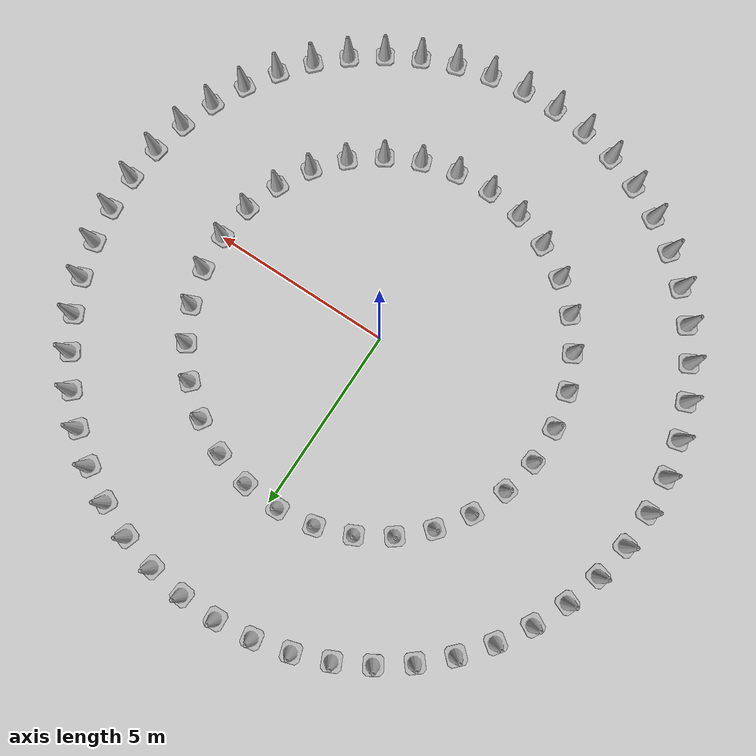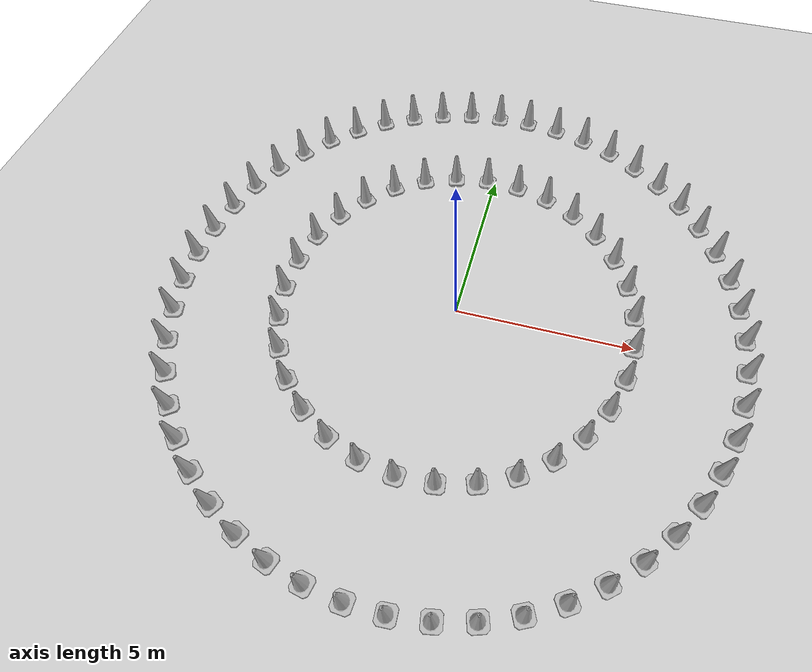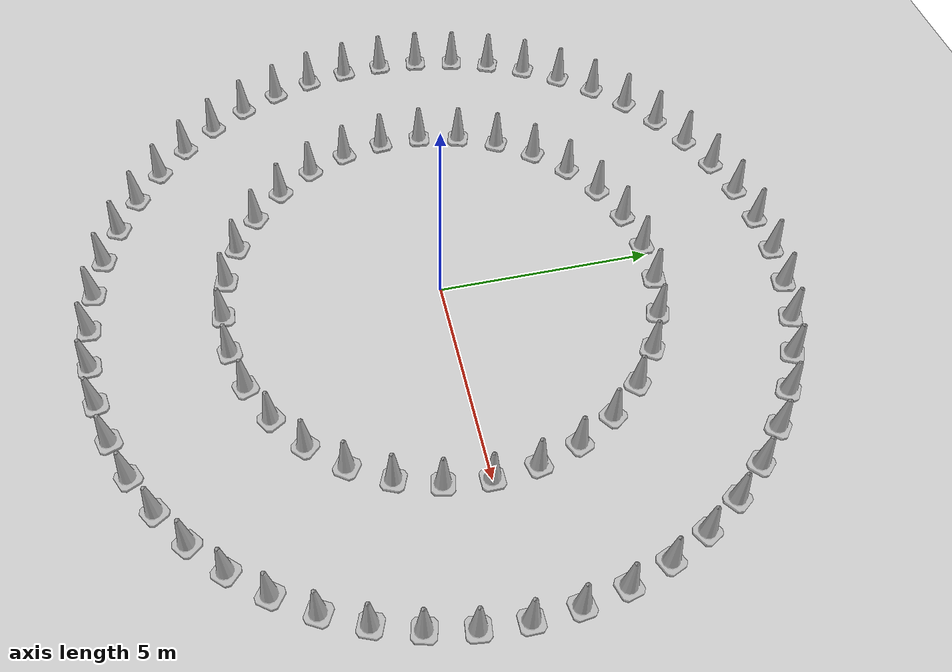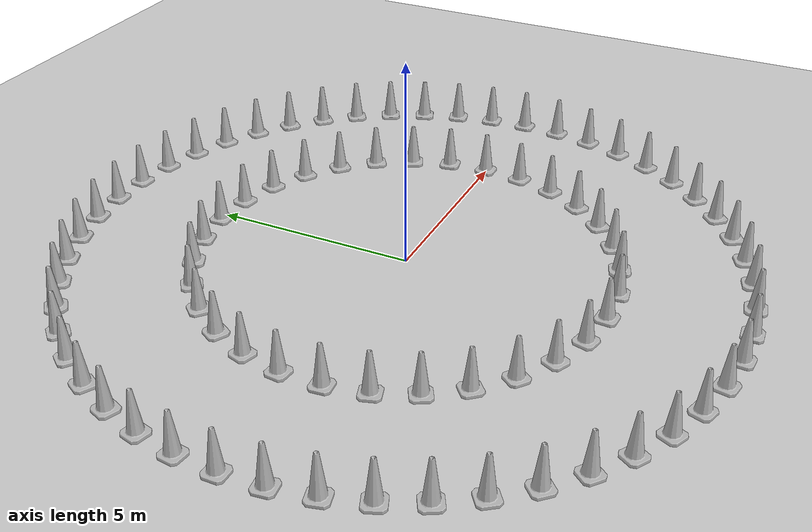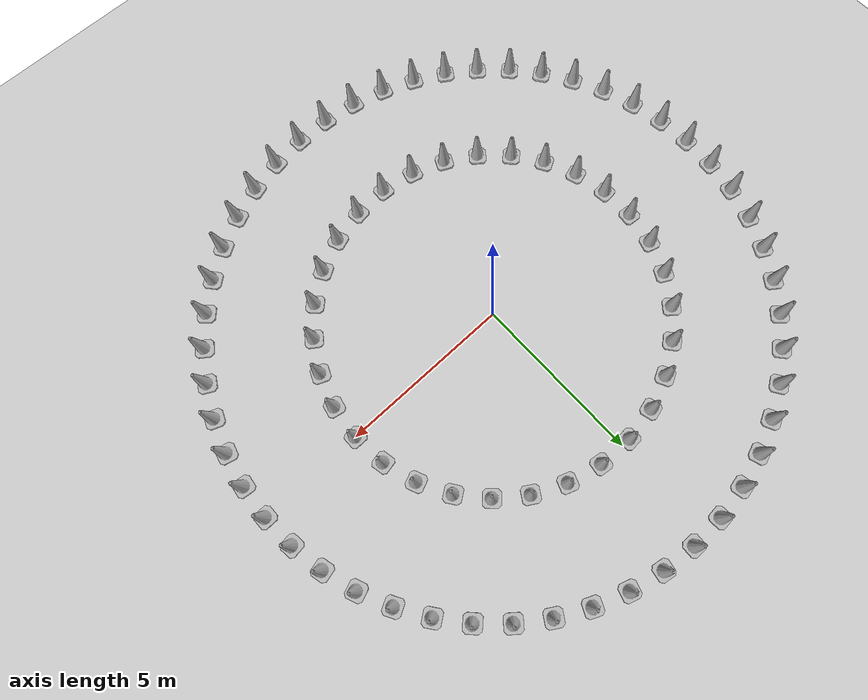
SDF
<?xml version='1.0' ?>
<sdf version='1.6'>
  <world name='circular_cone_track'>
    <plugin name='gazebo_ros_properties' filename='libgazebo_ros_properties.so'>
      <ros>
        <namespace>/erp42</namespace>
      </ros>
    </plugin>
    <include>
      <uri>model://ground_plane</uri>
    </include>
    <include>
      <uri>model://sun</uri>
    </include>
    <scene>
      <ambient>0.6 0.6 0.6 1.0</ambient>
      <shadows>false</shadows>
    </scene>
    <physics name='default_physics' type='ode'>
      <max_step_size>0.001</max_step_size>
      <real_time_update_rate>1000</real_time_update_rate>
    </physics>
    <spherical_coordinates>
      <surface_model>EARTH_WGS84</surface_model>
      <latitude_deg>37.238973</latitude_deg>
      <longitude_deg>126.7729942</longitude_deg>
      <elevation>0</elevation>
      <heading_deg>180</heading_deg>
    </spherical_coordinates>
    <gravity>0 0 -9.8</gravity>
    <!-- Circular cone track centered at the world origin -->
    <!-- Assumption: track width 3m => inner radius 5m, outer radius 8m -->
    <!-- Cone spacing is approximately 1m along each ring -->
    <!-- inner ring: radius=5.0m, cones=31, spacing≈1.013m -->
    <model name='cone_inner_000'>
      <static>true</static>
      <link name='link'>
        <collision name='collision'>
          <geometry>
            <mesh>
              <scale>10 10 10</scale>
              <uri>model://construction_cone/meshes/construction_cone.dae</uri>
            </mesh>
          </geometry>
        </collision>
        <visual name='visual'>
          <geometry>
            <mesh>
              <scale>10 10 10</scale>
              <uri>model://construction_cone/meshes/construction_cone.dae</uri>
            </mesh>
          </geometry>
        </visual>
      </link>
      <pose>5.0000 0.0000 0 0 0 1.5708</pose>
    </model>
    <model name='cone_inner_001'>
      <static>true</static>
      <link name='link'>
        <collision name='collision'>
          <geometry>
            <mesh>
              <scale>10 10 10</scale>
              <uri>model://construction_cone/meshes/construction_cone.dae</uri>
            </mesh>
          </geometry>
        </collision>
        <visual name='visual'>
          <geometry>
            <mesh>
              <scale>10 10 10</scale>
              <uri>model://construction_cone/meshes/construction_cone.dae</uri>
            </mesh>
          </geometry>
        </visual>
      </link>
      <pose>4.8976 1.0065 0 0 0 1.7735</pose>
    </model>
    <model name='cone_inner_002'>
      <static>true</static>
      <link name='link'>
        <collision name='collision'>
          <geometry>
            <mesh>
              <scale>10 10 10</scale>
              <uri>model://construction_cone/meshes/construction_cone.dae</uri>
            </mesh>
          </geometry>
        </collision>
        <visual name='visual'>
          <geometry>
            <mesh>
              <scale>10 10 10</scale>
              <uri>model://construction_cone/meshes/construction_cone.dae</uri>
            </mesh>
          </geometry>
        </visual>
      </link>
      <pose>4.5948 1.9718 0 0 0 1.9762</pose>
    </model>
    <model name='cone_inner_003'>
      <static>true</static>
      <link name='link'>
        <collision name='collision'>
          <geometry>
            <mesh>
              <scale>10 10 10</scale>
              <uri>model://construction_cone/meshes/construction_cone.dae</uri>
            </mesh>
          </geometry>
        </collision>
        <visual name='visual'>
          <geometry>
            <mesh>
              <scale>10 10 10</scale>
              <uri>model://construction_cone/meshes/construction_cone.dae</uri>
            </mesh>
          </geometry>
        </visual>
      </link>
      <pose>4.1038 2.8563 0 0 0 2.1788</pose>
    </model>
    <model name='cone_inner_004'>
      <static>true</static>
      <link name='link'>
        <collision name='collision'>
          <geometry>
            <mesh>
              <scale>10 10 10</scale>
              <uri>model://construction_cone/meshes/construction_cone.dae</uri>
            </mesh>
          </geometry>
        </collision>
        <visual name='visual'>
          <geometry>
            <mesh>
              <scale>10 10 10</scale>
              <uri>model://construction_cone/meshes/construction_cone.dae</uri>
            </mesh>
          </geometry>
        </visual>
      </link>
      <pose>3.4448 3.6240 0 0 0 2.3815</pose>
    </model>
    <model name='cone_inner_005'>
      <static>true</static>
      <link name='link'>
        <collision name='collision'>
          <geometry>
            <mesh>
              <scale>10 10 10</scale>
              <uri>model://construction_cone/meshes/construction_cone.dae</uri>
            </mesh>
          </geometry>
        </collision>
        <visual name='visual'>
          <geometry>
            <mesh>
              <scale>10 10 10</scale>
              <uri>model://construction_cone/meshes/construction_cone.dae</uri>
            </mesh>
          </geometry>
        </visual>
      </link>
      <pose>2.6448 4.2432 0 0 0 2.5842</pose>
    </model>
    <model name='cone_inner_006'>
      <static>true</static>
      <link name='link'>
        <collision name='collision'>
          <geometry>
            <mesh>
              <scale>10 10 10</scale>
              <uri>model://construction_cone/meshes/construction_cone.dae</uri>
            </mesh>
          </geometry>
        </collision>
        <visual name='visual'>
          <geometry>
            <mesh>
              <scale>10 10 10</scale>
              <uri>model://construction_cone/meshes/construction_cone.dae</uri>
            </mesh>
          </geometry>
        </visual>
      </link>
      <pose>1.7365 4.6888 0 0 0 2.7869</pose>
    </model>
    <model name='cone_inner_007'>
      <static>true</static>
      <link name='link'>
        <collision name='collision'>
          <geometry>
            <mesh>
              <scale>10 10 10</scale>
              <uri>model://construction_cone/meshes/construction_cone.dae</uri>
            </mesh>
          </geometry>
        </collision>
        <visual name='visual'>
          <geometry>
            <mesh>
              <scale>10 10 10</scale>
              <uri>model://construction_cone/meshes/construction_cone.dae</uri>
            </mesh>
          </geometry>
        </visual>
      </link>
      <pose>0.7571 4.9423 0 0 0 2.9896</pose>
    </model>
    <model name='cone_inner_008'>
      <static>true</static>
      <link name='link'>
        <collision name='collision'>
          <geometry>
            <mesh>
              <scale>10 10 10</scale>
              <uri>model://construction_cone/meshes/construction_cone.dae</uri>
            </mesh>
          </geometry>
        </collision>
        <visual name='visual'>
          <geometry>
            <mesh>
              <scale>10 10 10</scale>
              <uri>model://construction_cone/meshes/construction_cone.dae</uri>
            </mesh>
          </geometry>
        </visual>
      </link>
      <pose>-0.2532 4.9936 0 0 0 3.1923</pose>
    </model>
    <model name='cone_inner_009'>
      <static>true</static>
      <link name='link'>
        <collision name='collision'>
          <geometry>
            <mesh>
              <scale>10 10 10</scale>
              <uri>model://construction_cone/meshes/construction_cone.dae</uri>
            </mesh>
          </geometry>
        </collision>
        <visual name='visual'>
          <geometry>
            <mesh>
              <scale>10 10 10</scale>
              <uri>model://construction_cone/meshes/construction_cone.dae</uri>
            </mesh>
          </geometry>
        </visual>
      </link>
      <pose>-1.2533 4.8404 0 0 0 3.3949</pose>
    </model>
    <model name='cone_inner_010'>
      <static>true</static>
      <link name='link'>
        <collision name='collision'>
          <geometry>
            <mesh>
              <scale>10 10 10</scale>
              <uri>model://construction_cone/meshes/construction_cone.dae</uri>
            </mesh>
          </geometry>
        </collision>
        <visual name='visual'>
          <geometry>
            <mesh>
              <scale>10 10 10</scale>
              <uri>model://construction_cone/meshes/construction_cone.dae</uri>
            </mesh>
          </geometry>
        </visual>
      </link>
      <pose>-2.2020 4.4890 0 0 0 3.5976</pose>
    </model>
    <model name='cone_inner_011'>
      <static>true</static>
      <link name='link'>
        <collision name='collision'>
          <geometry>
            <mesh>
              <scale>10 10 10</scale>
              <uri>model://construction_cone/meshes/construction_cone.dae</uri>
            </mesh>
          </geometry>
        </collision>
        <visual name='visual'>
          <geometry>
            <mesh>
              <scale>10 10 10</scale>
              <uri>model://construction_cone/meshes/construction_cone.dae</uri>
            </mesh>
          </geometry>
        </visual>
      </link>
      <pose>-3.0605 3.9539 0 0 0 3.8003</pose>
    </model>
    <model name='cone_inner_012'>
      <static>true</static>
      <link name='link'>
        <collision name='collision'>
          <geometry>
            <mesh>
              <scale>10 10 10</scale>
              <uri>model://construction_cone/meshes/construction_cone.dae</uri>
            </mesh>
          </geometry>
        </collision>
        <visual name='visual'>
          <geometry>
            <mesh>
              <scale>10 10 10</scale>
              <uri>model://construction_cone/meshes/construction_cone.dae</uri>
            </mesh>
          </geometry>
        </visual>
      </link>
      <pose>-3.7938 3.2569 0 0 0 4.0030</pose>
    </model>
    <model name='cone_inner_013'>
      <static>true</static>
      <link name='link'>
        <collision name='collision'>
          <geometry>
            <mesh>
              <scale>10 10 10</scale>
              <uri>model://construction_cone/meshes/construction_cone.dae</uri>
            </mesh>
          </geometry>
        </collision>
        <visual name='visual'>
          <geometry>
            <mesh>
              <scale>10 10 10</scale>
              <uri>model://construction_cone/meshes/construction_cone.dae</uri>
            </mesh>
          </geometry>
        </visual>
      </link>
      <pose>-4.3717 2.4265 0 0 0 4.2057</pose>
    </model>
    <model name='cone_inner_014'>
      <static>true</static>
      <link name='link'>
        <collision name='collision'>
          <geometry>
            <mesh>
              <scale>10 10 10</scale>
              <uri>model://construction_cone/meshes/construction_cone.dae</uri>
            </mesh>
          </geometry>
        </collision>
        <visual name='visual'>
          <geometry>
            <mesh>
              <scale>10 10 10</scale>
              <uri>model://construction_cone/meshes/construction_cone.dae</uri>
            </mesh>
          </geometry>
        </visual>
      </link>
      <pose>-4.7707 1.4968 0 0 0 4.4084</pose>
    </model>
    <model name='cone_inner_015'>
      <static>true</static>
      <link name='link'>
        <collision name='collision'>
          <geometry>
            <mesh>
              <scale>10 10 10</scale>
              <uri>model://construction_cone/meshes/construction_cone.dae</uri>
            </mesh>
          </geometry>
        </collision>
        <visual name='visual'>
          <geometry>
            <mesh>
              <scale>10 10 10</scale>
              <uri>model://construction_cone/meshes/construction_cone.dae</uri>
            </mesh>
          </geometry>
        </visual>
      </link>
      <pose>-4.9743 0.5058 0 0 0 4.6110</pose>
    </model>
    <model name='cone_inner_016'>
      <static>true</static>
      <link name='link'>
        <collision name='collision'>
          <geometry>
            <mesh>
              <scale>10 10 10</scale>
              <uri>model://construction_cone/meshes/construction_cone.dae</uri>
            </mesh>
          </geometry>
        </collision>
        <visual name='visual'>
          <geometry>
            <mesh>
              <scale>10 10 10</scale>
              <uri>model://construction_cone/meshes/construction_cone.dae</uri>
            </mesh>
          </geometry>
        </visual>
      </link>
      <pose>-4.9743 -0.5058 0 0 0 4.8137</pose>
    </model>
    <model name='cone_inner_017'>
      <static>true</static>
      <link name='link'>
        <collision name='collision'>
          <geometry>
            <mesh>
              <scale>10 10 10</scale>
              <uri>model://construction_cone/meshes/construction_cone.dae</uri>
            </mesh>
          </geometry>
        </collision>
        <visual name='visual'>
          <geometry>
            <mesh>
              <scale>10 10 10</scale>
              <uri>model://construction_cone/meshes/construction_cone.dae</uri>
            </mesh>
          </geometry>
        </visual>
      </link>
      <pose>-4.7707 -1.4968 0 0 0 5.0164</pose>
    </model>
    <model name='cone_inner_018'>
      <static>true</static>
      <link name='link'>
        <collision name='collision'>
          <geometry>
            <mesh>
              <scale>10 10 10</scale>
              <uri>model://construction_cone/meshes/construction_cone.dae</uri>
            </mesh>
          </geometry>
        </collision>
        <visual name='visual'>
          <geometry>
            <mesh>
              <scale>10 10 10</scale>
              <uri>model://construction_cone/meshes/construction_cone.dae</uri>
            </mesh>
          </geometry>
        </visual>
      </link>
      <pose>-4.3717 -2.4265 0 0 0 5.2191</pose>
    </model>
    <model name='cone_inner_019'>
      <static>true</static>
      <link name='link'>
        <collision name='collision'>
          <geometry>
            <mesh>
              <scale>10 10 10</scale>
              <uri>model://construction_cone/meshes/construction_cone.dae</uri>
            </mesh>
          </geometry>
        </collision>
        <visual name='visual'>
          <geometry>
            <mesh>
              <scale>10 10 10</scale>
              <uri>model://construction_cone/meshes/construction_cone.dae</uri>
            </mesh>
          </geometry>
        </visual>
      </link>
      <pose>-3.7938 -3.2569 0 0 0 5.4218</pose>
    </model>
    <model name='cone_inner_020'>
      <static>true</static>
      <link name='link'>
        <collision name='collision'>
          <geometry>
            <mesh>
              <scale>10 10 10</scale>
              <uri>model://construction_cone/meshes/construction_cone.dae</uri>
            </mesh>
          </geometry>
        </collision>
        <visual name='visual'>
          <geometry>
            <mesh>
              <scale>10 10 10</scale>
              <uri>model://construction_cone/meshes/construction_cone.dae</uri>
            </mesh>
          </geometry>
        </visual>
      </link>
      <pose>-3.0605 -3.9539 0 0 0 5.6245</pose>
    </model>
    <model name='cone_inner_021'>
      <static>true</static>
      <link name='link'>
        <collision name='collision'>
          <geometry>
            <mesh>
              <scale>10 10 10</scale>
              <uri>model://construction_cone/meshes/construction_cone.dae</uri>
            </mesh>
          </geometry>
        </collision>
        <visual name='visual'>
          <geometry>
            <mesh>
              <scale>10 10 10</scale>
              <uri>model://construction_cone/meshes/construction_cone.dae</uri>
            </mesh>
          </geometry>
        </visual>
      </link>
      <pose>-2.2020 -4.4890 0 0 0 5.8271</pose>
    </model>
    <model name='cone_inner_022'>
      <static>true</static>
      <link name='link'>
        <collision name='collision'>
          <geometry>
            <mesh>
              <scale>10 10 10</scale>
              <uri>model://construction_cone/meshes/construction_cone.dae</uri>
            </mesh>
          </geometry>
        </collision>
        <visual name='visual'>
          <geometry>
            <mesh>
              <scale>10 10 10</scale>
              <uri>model://construction_cone/meshes/construction_cone.dae</uri>
            </mesh>
          </geometry>
        </visual>
      </link>
      <pose>-1.2533 -4.8404 0 0 0 6.0298</pose>
    </model>
    <model name='cone_inner_023'>
      <static>true</static>
      <link name='link'>
        <collision name='collision'>
          <geometry>
            <mesh>
              <scale>10 10 10</scale>
              <uri>model://construction_cone/meshes/construction_cone.dae</uri>
            </mesh>
          </geometry>
        </collision>
        <visual name='visual'>
          <geometry>
            <mesh>
              <scale>10 10 10</scale>
              <uri>model://construction_cone/meshes/construction_cone.dae</uri>
            </mesh>
          </geometry>
        </visual>
      </link>
      <pose>-0.2532 -4.9936 0 0 0 6.2325</pose>
    </model>
    <model name='cone_inner_024'>
      <static>true</static>
      <link name='link'>
        <collision name='collision'>
          <geometry>
            <mesh>
              <scale>10 10 10</scale>
              <uri>model://construction_cone/meshes/construction_cone.dae</uri>
            </mesh>
          </geometry>
        </collision>
        <visual name='visual'>
          <geometry>
            <mesh>
              <scale>10 10 10</scale>
              <uri>model://construction_cone/meshes/construction_cone.dae</uri>
            </mesh>
          </geometry>
        </visual>
      </link>
      <pose>0.7571 -4.9423 0 0 0 6.4352</pose>
    </model>
    <model name='cone_inner_025'>
      <static>true</static>
      <link name='link'>
        <collision name='collision'>
          <geometry>
            <mesh>
              <scale>10 10 10</scale>
              <uri>model://construction_cone/meshes/construction_cone.dae</uri>
            </mesh>
          </geometry>
        </collision>
        <visual name='visual'>
          <geometry>
            <mesh>
              <scale>10 10 10</scale>
              <uri>model://construction_cone/meshes/construction_cone.dae</uri>
            </mesh>
          </geometry>
        </visual>
      </link>
      <pose>1.7365 -4.6888 0 0 0 6.6379</pose>
    </model>
    <model name='cone_inner_026'>
      <static>true</static>
      <link name='link'>
        <collision name='collision'>
          <geometry>
            <mesh>
              <scale>10 10 10</scale>
              <uri>model://construction_cone/meshes/construction_cone.dae</uri>
            </mesh>
          </geometry>
        </collision>
        <visual name='visual'>
          <geometry>
            <mesh>
              <scale>10 10 10</scale>
              <uri>model://construction_cone/meshes/construction_cone.dae</uri>
            </mesh>
          </geometry>
        </visual>
      </link>
      <pose>2.6448 -4.2432 0 0 0 6.8406</pose>
    </model>
    <model name='cone_inner_027'>
      <static>true</static>
      <link name='link'>
        <collision name='collision'>
          <geometry>
            <mesh>
              <scale>10 10 10</scale>
              <uri>model://construction_cone/meshes/construction_cone.dae</uri>
            </mesh>
          </geometry>
        </collision>
        <visual name='visual'>
          <geometry>
            <mesh>
              <scale>10 10 10</scale>
              <uri>model://construction_cone/meshes/construction_cone.dae</uri>
            </mesh>
          </geometry>
        </visual>
      </link>
      <pose>3.4448 -3.6240 0 0 0 7.0432</pose>
    </model>
    <model name='cone_inner_028'>
      <static>true</static>
      <link name='link'>
        <collision name='collision'>
          <geometry>
            <mesh>
              <scale>10 10 10</scale>
              <uri>model://construction_cone/meshes/construction_cone.dae</uri>
            </mesh>
          </geometry>
        </collision>
        <visual name='visual'>
          <geometry>
            <mesh>
              <scale>10 10 10</scale>
              <uri>model://construction_cone/meshes/construction_cone.dae</uri>
            </mesh>
          </geometry>
        </visual>
      </link>
      <pose>4.1038 -2.8563 0 0 0 7.2459</pose>
    </model>
    <model name='cone_inner_029'>
      <static>true</static>
      <link name='link'>
        <collision name='collision'>
          <geometry>
            <mesh>
              <scale>10 10 10</scale>
              <uri>model://construction_cone/meshes/construction_cone.dae</uri>
            </mesh>
          </geometry>
        </collision>
        <visual name='visual'>
          <geometry>
            <mesh>
              <scale>10 10 10</scale>
              <uri>model://construction_cone/meshes/construction_cone.dae</uri>
            </mesh>
          </geometry>
        </visual>
      </link>
      <pose>4.5948 -1.9718 0 0 0 7.4486</pose>
    </model>
    <model name='cone_inner_030'>
      <static>true</static>
      <link name='link'>
        <collision name='collision'>
          <geometry>
            <mesh>
              <scale>10 10 10</scale>
              <uri>model://construction_cone/meshes/construction_cone.dae</uri>
            </mesh>
          </geometry>
        </collision>
        <visual name='visual'>
          <geometry>
            <mesh>
              <scale>10 10 10</scale>
              <uri>model://construction_cone/meshes/construction_cone.dae</uri>
            </mesh>
          </geometry>
        </visual>
      </link>
      <pose>4.8976 -1.0065 0 0 0 7.6513</pose>
    </model>
    <!-- outer ring: radius=8.0m, cones=50, spacing≈1.005m -->
    <model name='cone_outer_000'>
      <static>true</static>
      <link name='link'>
        <collision name='collision'>
          <geometry>
            <mesh>
              <scale>10 10 10</scale>
              <uri>model://construction_cone/meshes/construction_cone.dae</uri>
            </mesh>
          </geometry>
        </collision>
        <visual name='visual'>
          <geometry>
            <mesh>
              <scale>10 10 10</scale>
              <uri>model://construction_cone/meshes/construction_cone.dae</uri>
            </mesh>
          </geometry>
        </visual>
      </link>
      <pose>8.0000 0.0000 0 0 0 1.5708</pose>
    </model>
    <model name='cone_outer_001'>
      <static>true</static>
      <link name='link'>
        <collision name='collision'>
          <geometry>
            <mesh>
              <scale>10 10 10</scale>
              <uri>model://construction_cone/meshes/construction_cone.dae</uri>
            </mesh>
          </geometry>
        </collision>
        <visual name='visual'>
          <geometry>
            <mesh>
              <scale>10 10 10</scale>
              <uri>model://construction_cone/meshes/construction_cone.dae</uri>
            </mesh>
          </geometry>
        </visual>
      </link>
      <pose>7.9369 1.0027 0 0 0 1.6965</pose>
    </model>
    <model name='cone_outer_002'>
      <static>true</static>
      <link name='link'>
        <collision name='collision'>
          <geometry>
            <mesh>
              <scale>10 10 10</scale>
              <uri>model://construction_cone/meshes/construction_cone.dae</uri>
            </mesh>
          </geometry>
        </collision>
        <visual name='visual'>
          <geometry>
            <mesh>
              <scale>10 10 10</scale>
              <uri>model://construction_cone/meshes/construction_cone.dae</uri>
            </mesh>
          </geometry>
        </visual>
      </link>
      <pose>7.7487 1.9895 0 0 0 1.8221</pose>
    </model>
    <model name='cone_outer_003'>
      <static>true</static>
      <link name='link'>
        <collision name='collision'>
          <geometry>
            <mesh>
              <scale>10 10 10</scale>
              <uri>model://construction_cone/meshes/construction_cone.dae</uri>
            </mesh>
          </geometry>
        </collision>
        <visual name='visual'>
          <geometry>
            <mesh>
              <scale>10 10 10</scale>
              <uri>model://construction_cone/meshes/construction_cone.dae</uri>
            </mesh>
          </geometry>
        </visual>
      </link>
      <pose>7.4382 2.9450 0 0 0 1.9478</pose>
    </model>
    <model name='cone_outer_004'>
      <static>true</static>
      <link name='link'>
        <collision name='collision'>
          <geometry>
            <mesh>
              <scale>10 10 10</scale>
              <uri>model://construction_cone/meshes/construction_cone.dae</uri>
            </mesh>
          </geometry>
        </collision>
        <visual name='visual'>
          <geometry>
            <mesh>
              <scale>10 10 10</scale>
              <uri>model://construction_cone/meshes/construction_cone.dae</uri>
            </mesh>
          </geometry>
        </visual>
      </link>
      <pose>7.0105 3.8540 0 0 0 2.0735</pose>
    </model>
    <model name='cone_outer_005'>
      <static>true</static>
      <link name='link'>
        <collision name='collision'>
          <geometry>
            <mesh>
              <scale>10 10 10</scale>
              <uri>model://construction_cone/meshes/construction_cone.dae</uri>
            </mesh>
          </geometry>
        </collision>
        <visual name='visual'>
          <geometry>
            <mesh>
              <scale>10 10 10</scale>
              <uri>model://construction_cone/meshes/construction_cone.dae</uri>
            </mesh>
          </geometry>
        </visual>
      </link>
      <pose>6.4721 4.7023 0 0 0 2.1991</pose>
    </model>
    <model name='cone_outer_006'>
      <static>true</static>
      <link name='link'>
        <collision name='collision'>
          <geometry>
            <mesh>
              <scale>10 10 10</scale>
              <uri>model://construction_cone/meshes/construction_cone.dae</uri>
            </mesh>
          </geometry>
        </collision>
        <visual name='visual'>
          <geometry>
            <mesh>
              <scale>10 10 10</scale>
              <uri>model://construction_cone/meshes/construction_cone.dae</uri>
            </mesh>
          </geometry>
        </visual>
      </link>
      <pose>5.8317 5.4764 0 0 0 2.3248</pose>
    </model>
    <model name='cone_outer_007'>
      <static>true</static>
      <link name='link'>
        <collision name='collision'>
          <geometry>
            <mesh>
              <scale>10 10 10</scale>
              <uri>model://construction_cone/meshes/construction_cone.dae</uri>
            </mesh>
          </geometry>
        </collision>
        <visual name='visual'>
          <geometry>
            <mesh>
              <scale>10 10 10</scale>
              <uri>model://construction_cone/meshes/construction_cone.dae</uri>
            </mesh>
          </geometry>
        </visual>
      </link>
      <pose>5.0994 6.1641 0 0 0 2.4504</pose>
    </model>
    <model name='cone_outer_008'>
      <static>true</static>
      <link name='link'>
        <collision name='collision'>
          <geometry>
            <mesh>
              <scale>10 10 10</scale>
              <uri>model://construction_cone/meshes/construction_cone.dae</uri>
            </mesh>
          </geometry>
        </collision>
        <visual name='visual'>
          <geometry>
            <mesh>
              <scale>10 10 10</scale>
              <uri>model://construction_cone/meshes/construction_cone.dae</uri>
            </mesh>
          </geometry>
        </visual>
      </link>
      <pose>4.2866 6.7546 0 0 0 2.5761</pose>
    </model>
    <model name='cone_outer_009'>
      <static>true</static>
      <link name='link'>
        <collision name='collision'>
          <geometry>
            <mesh>
              <scale>10 10 10</scale>
              <uri>model://construction_cone/meshes/construction_cone.dae</uri>
            </mesh>
          </geometry>
        </collision>
        <visual name='visual'>
          <geometry>
            <mesh>
              <scale>10 10 10</scale>
              <uri>model://construction_cone/meshes/construction_cone.dae</uri>
            </mesh>
          </geometry>
        </visual>
      </link>
      <pose>3.4062 7.2386 0 0 0 2.7018</pose>
    </model>
    <model name='cone_outer_010'>
      <static>true</static>
      <link name='link'>
        <collision name='collision'>
          <geometry>
            <mesh>
              <scale>10 10 10</scale>
              <uri>model://construction_cone/meshes/construction_cone.dae</uri>
            </mesh>
          </geometry>
        </collision>
        <visual name='visual'>
          <geometry>
            <mesh>
              <scale>10 10 10</scale>
              <uri>model://construction_cone/meshes/construction_cone.dae</uri>
            </mesh>
          </geometry>
        </visual>
      </link>
      <pose>2.4721 7.6085 0 0 0 2.8274</pose>
    </model>
    <model name='cone_outer_011'>
      <static>true</static>
      <link name='link'>
        <collision name='collision'>
          <geometry>
            <mesh>
              <scale>10 10 10</scale>
              <uri>model://construction_cone/meshes/construction_cone.dae</uri>
            </mesh>
          </geometry>
        </collision>
        <visual name='visual'>
          <geometry>
            <mesh>
              <scale>10 10 10</scale>
              <uri>model://construction_cone/meshes/construction_cone.dae</uri>
            </mesh>
          </geometry>
        </visual>
      </link>
      <pose>1.4991 7.8583 0 0 0 2.9531</pose>
    </model>
    <model name='cone_outer_012'>
      <static>true</static>
      <link name='link'>
        <collision name='collision'>
          <geometry>
            <mesh>
              <scale>10 10 10</scale>
              <uri>model://construction_cone/meshes/construction_cone.dae</uri>
            </mesh>
          </geometry>
        </collision>
        <visual name='visual'>
          <geometry>
            <mesh>
              <scale>10 10 10</scale>
              <uri>model://construction_cone/meshes/construction_cone.dae</uri>
            </mesh>
          </geometry>
        </visual>
      </link>
      <pose>0.5023 7.9842 0 0 0 3.0788</pose>
    </model>
    <model name='cone_outer_013'>
      <static>true</static>
      <link name='link'>
        <collision name='collision'>
          <geometry>
            <mesh>
              <scale>10 10 10</scale>
              <uri>model://construction_cone/meshes/construction_cone.dae</uri>
            </mesh>
          </geometry>
        </collision>
        <visual name='visual'>
          <geometry>
            <mesh>
              <scale>10 10 10</scale>
              <uri>model://construction_cone/meshes/construction_cone.dae</uri>
            </mesh>
          </geometry>
        </visual>
      </link>
      <pose>-0.5023 7.9842 0 0 0 3.2044</pose>
    </model>
    <model name='cone_outer_014'>
      <static>true</static>
      <link name='link'>
        <collision name='collision'>
          <geometry>
            <mesh>
              <scale>10 10 10</scale>
              <uri>model://construction_cone/meshes/construction_cone.dae</uri>
            </mesh>
          </geometry>
        </collision>
        <visual name='visual'>
          <geometry>
            <mesh>
              <scale>10 10 10</scale>
              <uri>model://construction_cone/meshes/construction_cone.dae</uri>
            </mesh>
          </geometry>
        </visual>
      </link>
      <pose>-1.4991 7.8583 0 0 0 3.3301</pose>
    </model>
    <model name='cone_outer_015'>
      <static>true</static>
      <link name='link'>
        <collision name='collision'>
          <geometry>
            <mesh>
              <scale>10 10 10</scale>
              <uri>model://construction_cone/meshes/construction_cone.dae</uri>
            </mesh>
          </geometry>
        </collision>
        <visual name='visual'>
          <geometry>
            <mesh>
              <scale>10 10 10</scale>
              <uri>model://construction_cone/meshes/construction_cone.dae</uri>
            </mesh>
          </geometry>
        </visual>
      </link>
      <pose>-2.4721 7.6085 0 0 0 3.4558</pose>
    </model>
    <model name='cone_outer_016'>
      <static>true</static>
      <link name='link'>
        <collision name='collision'>
          <geometry>
            <mesh>
              <scale>10 10 10</scale>
              <uri>model://construction_cone/meshes/construction_cone.dae</uri>
            </mesh>
          </geometry>
        </collision>
        <visual name='visual'>
          <geometry>
            <mesh>
              <scale>10 10 10</scale>
              <uri>model://construction_cone/meshes/construction_cone.dae</uri>
            </mesh>
          </geometry>
        </visual>
      </link>
      <pose>-3.4062 7.2386 0 0 0 3.5814</pose>
    </model>
    <model name='cone_outer_017'>
      <static>true</static>
      <link name='link'>
        <collision name='collision'>
          <geometry>
            <mesh>
              <scale>10 10 10</scale>
              <uri>model://construction_cone/meshes/construction_cone.dae</uri>
            </mesh>
          </geometry>
        </collision>
        <visual name='visual'>
          <geometry>
            <mesh>
              <scale>10 10 10</scale>
              <uri>model://construction_cone/meshes/construction_cone.dae</uri>
            </mesh>
          </geometry>
        </visual>
      </link>
      <pose>-4.2866 6.7546 0 0 0 3.7071</pose>
    </model>
    <model name='cone_outer_018'>
      <static>true</static>
      <link name='link'>
        <collision name='collision'>
          <geometry>
            <mesh>
              <scale>10 10 10</scale>
              <uri>model://construction_cone/meshes/construction_cone.dae</uri>
            </mesh>
          </geometry>
        </collision>
        <visual name='visual'>
          <geometry>
            <mesh>
              <scale>10 10 10</scale>
              <uri>model://construction_cone/meshes/construction_cone.dae</uri>
            </mesh>
          </geometry>
        </visual>
      </link>
      <pose>-5.0994 6.1641 0 0 0 3.8327</pose>
    </model>
    <model name='cone_outer_019'>
      <static>true</static>
      <link name='link'>
        <collision name='collision'>
          <geometry>
            <mesh>
              <scale>10 10 10</scale>
              <uri>model://construction_cone/meshes/construction_cone.dae</uri>
            </mesh>
          </geometry>
        </collision>
        <visual name='visual'>
          <geometry>
            <mesh>
              <scale>10 10 10</scale>
              <uri>model://construction_cone/meshes/construction_cone.dae</uri>
            </mesh>
          </geometry>
        </visual>
      </link>
      <pose>-5.8317 5.4764 0 0 0 3.9584</pose>
    </model>
    <model name='cone_outer_020'>
      <static>true</static>
      <link name='link'>
        <collision name='collision'>
          <geometry>
            <mesh>
              <scale>10 10 10</scale>
              <uri>model://construction_cone/meshes/construction_cone.dae</uri>
            </mesh>
          </geometry>
        </collision>
        <visual name='visual'>
          <geometry>
            <mesh>
              <scale>10 10 10</scale>
              <uri>model://construction_cone/meshes/construction_cone.dae</uri>
            </mesh>
          </geometry>
        </visual>
      </link>
      <pose>-6.4721 4.7023 0 0 0 4.0841</pose>
    </model>
    <model name='cone_outer_021'>
      <static>true</static>
      <link name='link'>
        <collision name='collision'>
          <geometry>
            <mesh>
              <scale>10 10 10</scale>
              <uri>model://construction_cone/meshes/construction_cone.dae</uri>
            </mesh>
          </geometry>
        </collision>
        <visual name='visual'>
          <geometry>
            <mesh>
              <scale>10 10 10</scale>
              <uri>model://construction_cone/meshes/construction_cone.dae</uri>
            </mesh>
          </geometry>
        </visual>
      </link>
      <pose>-7.0105 3.8540 0 0 0 4.2097</pose>
    </model>
    <model name='cone_outer_022'>
      <static>true</static>
      <link name='link'>
        <collision name='collision'>
          <geometry>
            <mesh>
              <scale>10 10 10</scale>
              <uri>model://construction_cone/meshes/construction_cone.dae</uri>
            </mesh>
          </geometry>
        </collision>
        <visual name='visual'>
          <geometry>
            <mesh>
              <scale>10 10 10</scale>
              <uri>model://construction_cone/meshes/construction_cone.dae</uri>
            </mesh>
          </geometry>
        </visual>
      </link>
      <pose>-7.4382 2.9450 0 0 0 4.3354</pose>
    </model>
    <model name='cone_outer_023'>
      <static>true</static>
      <link name='link'>
        <collision name='collision'>
          <geometry>
            <mesh>
              <scale>10 10 10</scale>
              <uri>model://construction_cone/meshes/construction_cone.dae</uri>
            </mesh>
          </geometry>
        </collision>
        <visual name='visual'>
          <geometry>
            <mesh>
              <scale>10 10 10</scale>
              <uri>model://construction_cone/meshes/construction_cone.dae</uri>
            </mesh>
          </geometry>
        </visual>
      </link>
      <pose>-7.7487 1.9895 0 0 0 4.4611</pose>
    </model>
    <model name='cone_outer_024'>
      <static>true</static>
      <link name='link'>
        <collision name='collision'>
          <geometry>
            <mesh>
              <scale>10 10 10</scale>
              <uri>model://construction_cone/meshes/construction_cone.dae</uri>
            </mesh>
          </geometry>
        </collision>
        <visual name='visual'>
          <geometry>
            <mesh>
              <scale>10 10 10</scale>
              <uri>model://construction_cone/meshes/construction_cone.dae</uri>
            </mesh>
          </geometry>
        </visual>
      </link>
      <pose>-7.9369 1.0027 0 0 0 4.5867</pose>
    </model>
    <model name='cone_outer_025'>
      <static>true</static>
      <link name='link'>
        <collision name='collision'>
          <geometry>
            <mesh>
              <scale>10 10 10</scale>
              <uri>model://construction_cone/meshes/construction_cone.dae</uri>
            </mesh>
          </geometry>
        </collision>
        <visual name='visual'>
          <geometry>
            <mesh>
              <scale>10 10 10</scale>
              <uri>model://construction_cone/meshes/construction_cone.dae</uri>
            </mesh>
          </geometry>
        </visual>
      </link>
      <pose>-8.0000 0.0000 0 0 0 4.7124</pose>
    </model>
    <model name='cone_outer_026'>
      <static>true</static>
      <link name='link'>
        <collision name='collision'>
          <geometry>
            <mesh>
              <scale>10 10 10</scale>
              <uri>model://construction_cone/meshes/construction_cone.dae</uri>
            </mesh>
          </geometry>
        </collision>
        <visual name='visual'>
          <geometry>
            <mesh>
              <scale>10 10 10</scale>
              <uri>model://construction_cone/meshes/construction_cone.dae</uri>
            </mesh>
          </geometry>
        </visual>
      </link>
      <pose>-7.9369 -1.0027 0 0 0 4.8381</pose>
    </model>
    <model name='cone_outer_027'>
      <static>true</static>
      <link name='link'>
        <collision name='collision'>
          <geometry>
            <mesh>
              <scale>10 10 10</scale>
              <uri>model://construction_cone/meshes/construction_cone.dae</uri>
            </mesh>
          </geometry>
        </collision>
        <visual name='visual'>
          <geometry>
            <mesh>
              <scale>10 10 10</scale>
              <uri>model://construction_cone/meshes/construction_cone.dae</uri>
            </mesh>
          </geometry>
        </visual>
      </link>
      <pose>-7.7487 -1.9895 0 0 0 4.9637</pose>
    </model>
    <model name='cone_outer_028'>
      <static>true</static>
      <link name='link'>
        <collision name='collision'>
          <geometry>
            <mesh>
              <scale>10 10 10</scale>
              <uri>model://construction_cone/meshes/construction_cone.dae</uri>
            </mesh>
          </geometry>
        </collision>
        <visual name='visual'>
          <geometry>
            <mesh>
              <scale>10 10 10</scale>
              <uri>model://construction_cone/meshes/construction_cone.dae</uri>
            </mesh>
          </geometry>
        </visual>
      </link>
      <pose>-7.4382 -2.9450 0 0 0 5.0894</pose>
    </model>
    <model name='cone_outer_029'>
      <static>true</static>
      <link name='link'>
        <collision name='collision'>
          <geometry>
            <mesh>
              <scale>10 10 10</scale>
              <uri>model://construction_cone/meshes/construction_cone.dae</uri>
            </mesh>
          </geometry>
        </collision>
        <visual name='visual'>
          <geometry>
            <mesh>
              <scale>10 10 10</scale>
              <uri>model://construction_cone/meshes/construction_cone.dae</uri>
            </mesh>
          </geometry>
        </visual>
      </link>
      <pose>-7.0105 -3.8540 0 0 0 5.2150</pose>
    </model>
    <model name='cone_outer_030'>
      <static>true</static>
      <link name='link'>
        <collision name='collision'>
          <geometry>
            <mesh>
              <scale>10 10 10</scale>
              <uri>model://construction_cone/meshes/construction_cone.dae</uri>
            </mesh>
          </geometry>
        </collision>
        <visual name='visual'>
          <geometry>
            <mesh>
              <scale>10 10 10</scale>
              <uri>model://construction_cone/meshes/construction_cone.dae</uri>
            </mesh>
          </geometry>
        </visual>
      </link>
      <pose>-6.4721 -4.7023 0 0 0 5.3407</pose>
    </model>
    <model name='cone_outer_031'>
      <static>true</static>
      <link name='link'>
        <collision name='collision'>
          <geometry>
            <mesh>
              <scale>10 10 10</scale>
              <uri>model://construction_cone/meshes/construction_cone.dae</uri>
            </mesh>
          </geometry>
        </collision>
        <visual name='visual'>
          <geometry>
            <mesh>
              <scale>10 10 10</scale>
              <uri>model://construction_cone/meshes/construction_cone.dae</uri>
            </mesh>
          </geometry>
        </visual>
      </link>
      <pose>-5.8317 -5.4764 0 0 0 5.4664</pose>
    </model>
    <model name='cone_outer_032'>
      <static>true</static>
      <link name='link'>
        <collision name='collision'>
          <geometry>
            <mesh>
              <scale>10 10 10</scale>
              <uri>model://construction_cone/meshes/construction_cone.dae</uri>
            </mesh>
          </geometry>
        </collision>
        <visual name='visual'>
          <geometry>
            <mesh>
              <scale>10 10 10</scale>
              <uri>model://construction_cone/meshes/construction_cone.dae</uri>
            </mesh>
          </geometry>
        </visual>
      </link>
      <pose>-5.0994 -6.1641 0 0 0 5.5920</pose>
    </model>
    <model name='cone_outer_033'>
      <static>true</static>
      <link name='link'>
        <collision name='collision'>
          <geometry>
            <mesh>
              <scale>10 10 10</scale>
              <uri>model://construction_cone/meshes/construction_cone.dae</uri>
            </mesh>
          </geometry>
        </collision>
        <visual name='visual'>
          <geometry>
            <mesh>
              <scale>10 10 10</scale>
              <uri>model://construction_cone/meshes/construction_cone.dae</uri>
            </mesh>
          </geometry>
        </visual>
      </link>
      <pose>-4.2866 -6.7546 0 0 0 5.7177</pose>
    </model>
    <model name='cone_outer_034'>
      <static>true</static>
      <link name='link'>
        <collision name='collision'>
          <geometry>
            <mesh>
              <scale>10 10 10</scale>
              <uri>model://construction_cone/meshes/construction_cone.dae</uri>
            </mesh>
          </geometry>
        </collision>
        <visual name='visual'>
          <geometry>
            <mesh>
              <scale>10 10 10</scale>
              <uri>model://construction_cone/meshes/construction_cone.dae</uri>
            </mesh>
          </geometry>
        </visual>
      </link>
      <pose>-3.4062 -7.2386 0 0 0 5.8434</pose>
    </model>
    <model name='cone_outer_035'>
      <static>true</static>
      <link name='link'>
        <collision name='collision'>
          <geometry>
            <mesh>
              <scale>10 10 10</scale>
              <uri>model://construction_cone/meshes/construction_cone.dae</uri>
            </mesh>
          </geometry>
        </collision>
        <visual name='visual'>
          <geometry>
            <mesh>
              <scale>10 10 10</scale>
              <uri>model://construction_cone/meshes/construction_cone.dae</uri>
            </mesh>
          </geometry>
        </visual>
      </link>
      <pose>-2.4721 -7.6085 0 0 0 5.9690</pose>
    </model>
    <model name='cone_outer_036'>
      <static>true</static>
      <link name='link'>
        <collision name='collision'>
          <geometry>
            <mesh>
              <scale>10 10 10</scale>
              <uri>model://construction_cone/meshes/construction_cone.dae</uri>
            </mesh>
          </geometry>
        </collision>
        <visual name='visual'>
          <geometry>
            <mesh>
              <scale>10 10 10</scale>
              <uri>model://construction_cone/meshes/construction_cone.dae</uri>
            </mesh>
          </geometry>
        </visual>
      </link>
      <pose>-1.4991 -7.8583 0 0 0 6.0947</pose>
    </model>
    <model name='cone_outer_037'>
      <static>true</static>
      <link name='link'>
        <collision name='collision'>
          <geometry>
            <mesh>
              <scale>10 10 10</scale>
              <uri>model://construction_cone/meshes/construction_cone.dae</uri>
            </mesh>
          </geometry>
        </collision>
        <visual name='visual'>
          <geometry>
            <mesh>
              <scale>10 10 10</scale>
              <uri>model://construction_cone/meshes/construction_cone.dae</uri>
            </mesh>
          </geometry>
        </visual>
      </link>
      <pose>-0.5023 -7.9842 0 0 0 6.2204</pose>
    </model>
    <model name='cone_outer_038'>
      <static>true</static>
      <link name='link'>
        <collision name='collision'>
          <geometry>
            <mesh>
              <scale>10 10 10</scale>
              <uri>model://construction_cone/meshes/construction_cone.dae</uri>
            </mesh>
          </geometry>
        </collision>
        <visual name='visual'>
          <geometry>
            <mesh>
              <scale>10 10 10</scale>
              <uri>model://construction_cone/meshes/construction_cone.dae</uri>
            </mesh>
          </geometry>
        </visual>
      </link>
      <pose>0.5023 -7.9842 0 0 0 6.3460</pose>
    </model>
    <model name='cone_outer_039'>
      <static>true</static>
      <link name='link'>
        <collision name='collision'>
          <geometry>
            <mesh>
              <scale>10 10 10</scale>
              <uri>model://construction_cone/meshes/construction_cone.dae</uri>
            </mesh>
          </geometry>
        </collision>
        <visual name='visual'>
          <geometry>
            <mesh>
              <scale>10 10 10</scale>
              <uri>model://construction_cone/meshes/construction_cone.dae</uri>
            </mesh>
          </geometry>
        </visual>
      </link>
      <pose>1.4991 -7.8583 0 0 0 6.4717</pose>
    </model>
    <model name='cone_outer_040'>
      <static>true</static>
      <link name='link'>
        <collision name='collision'>
          <geometry>
            <mesh>
              <scale>10 10 10</scale>
              <uri>model://construction_cone/meshes/construction_cone.dae</uri>
            </mesh>
          </geometry>
        </collision>
        <visual name='visual'>
          <geometry>
            <mesh>
              <scale>10 10 10</scale>
              <uri>model://construction_cone/meshes/construction_cone.dae</uri>
            </mesh>
          </geometry>
        </visual>
      </link>
      <pose>2.4721 -7.6085 0 0 0 6.5973</pose>
    </model>
    <model name='cone_outer_041'>
      <static>true</static>
      <link name='link'>
        <collision name='collision'>
          <geometry>
            <mesh>
              <scale>10 10 10</scale>
              <uri>model://construction_cone/meshes/construction_cone.dae</uri>
            </mesh>
          </geometry>
        </collision>
        <visual name='visual'>
          <geometry>
            <mesh>
              <scale>10 10 10</scale>
              <uri>model://construction_cone/meshes/construction_cone.dae</uri>
            </mesh>
          </geometry>
        </visual>
      </link>
      <pose>3.4062 -7.2386 0 0 0 6.7230</pose>
    </model>
    <model name='cone_outer_042'>
      <static>true</static>
      <link name='link'>
        <collision name='collision'>
          <geometry>
            <mesh>
              <scale>10 10 10</scale>
              <uri>model://construction_cone/meshes/construction_cone.dae</uri>
            </mesh>
          </geometry>
        </collision>
        <visual name='visual'>
          <geometry>
            <mesh>
              <scale>10 10 10</scale>
              <uri>model://construction_cone/meshes/construction_cone.dae</uri>
            </mesh>
          </geometry>
        </visual>
      </link>
      <pose>4.2866 -6.7546 0 0 0 6.8487</pose>
    </model>
    <model name='cone_outer_043'>
      <static>true</static>
      <link name='link'>
        <collision name='collision'>
          <geometry>
            <mesh>
              <scale>10 10 10</scale>
              <uri>model://construction_cone/meshes/construction_cone.dae</uri>
            </mesh>
          </geometry>
        </collision>
        <visual name='visual'>
          <geometry>
            <mesh>
              <scale>10 10 10</scale>
              <uri>model://construction_cone/meshes/construction_cone.dae</uri>
            </mesh>
          </geometry>
        </visual>
      </link>
      <pose>5.0994 -6.1641 0 0 0 6.9743</pose>
    </model>
    <model name='cone_outer_044'>
      <static>true</static>
      <link name='link'>
        <collision name='collision'>
          <geometry>
            <mesh>
              <scale>10 10 10</scale>
              <uri>model://construction_cone/meshes/construction_cone.dae</uri>
            </mesh>
          </geometry>
        </collision>
        <visual name='visual'>
          <geometry>
            <mesh>
              <scale>10 10 10</scale>
              <uri>model://construction_cone/meshes/construction_cone.dae</uri>
            </mesh>
          </geometry>
        </visual>
      </link>
      <pose>5.8317 -5.4764 0 0 0 7.1000</pose>
    </model>
    <model name='cone_outer_045'>
      <static>true</static>
      <link name='link'>
        <collision name='collision'>
          <geometry>
            <mesh>
              <scale>10 10 10</scale>
              <uri>model://construction_cone/meshes/construction_cone.dae</uri>
            </mesh>
          </geometry>
        </collision>
        <visual name='visual'>
          <geometry>
            <mesh>
              <scale>10 10 10</scale>
              <uri>model://construction_cone/meshes/construction_cone.dae</uri>
            </mesh>
          </geometry>
        </visual>
      </link>
      <pose>6.4721 -4.7023 0 0 0 7.2257</pose>
    </model>
    <model name='cone_outer_046'>
      <static>true</static>
      <link name='link'>
        <collision name='collision'>
          <geometry>
            <mesh>
              <scale>10 10 10</scale>
              <uri>model://construction_cone/meshes/construction_cone.dae</uri>
            </mesh>
          </geometry>
        </collision>
        <visual name='visual'>
          <geometry>
            <mesh>
              <scale>10 10 10</scale>
              <uri>model://construction_cone/meshes/construction_cone.dae</uri>
            </mesh>
          </geometry>
        </visual>
      </link>
      <pose>7.0105 -3.8540 0 0 0 7.3513</pose>
    </model>
    <model name='cone_outer_047'>
      <static>true</static>
      <link name='link'>
        <collision name='collision'>
          <geometry>
            <mesh>
              <scale>10 10 10</scale>
              <uri>model://construction_cone/meshes/construction_cone.dae</uri>
            </mesh>
          </geometry>
        </collision>
        <visual name='visual'>
          <geometry>
            <mesh>
              <scale>10 10 10</scale>
              <uri>model://construction_cone/meshes/construction_cone.dae</uri>
            </mesh>
          </geometry>
        </visual>
      </link>
      <pose>7.4382 -2.9450 0 0 0 7.4770</pose>
    </model>
    <model name='cone_outer_048'>
      <static>true</static>
      <link name='link'>
        <collision name='collision'>
          <geometry>
            <mesh>
              <scale>10 10 10</scale>
              <uri>model://construction_cone/meshes/construction_cone.dae</uri>
            </mesh>
          </geometry>
        </collision>
        <visual name='visual'>
          <geometry>
            <mesh>
              <scale>10 10 10</scale>
              <uri>model://construction_cone/meshes/construction_cone.dae</uri>
            </mesh>
          </geometry>
        </visual>
      </link>
      <pose>7.7487 -1.9895 0 0 0 7.6027</pose>
    </model>
    <model name='cone_outer_049'>
      <static>true</static>
      <link name='link'>
        <collision name='collision'>
          <geometry>
            <mesh>
              <scale>10 10 10</scale>
              <uri>model://construction_cone/meshes/construction_cone.dae</uri>
            </mesh>
          </geometry>
        </collision>
        <visual name='visual'>
          <geometry>
            <mesh>
              <scale>10 10 10</scale>
              <uri>model://construction_cone/meshes/construction_cone.dae</uri>
            </mesh>
          </geometry>
        </visual>
      </link>
      <pose>7.9369 -1.0027 0 0 0 7.7283</pose>
    </model>
  </world>
</sdf>
